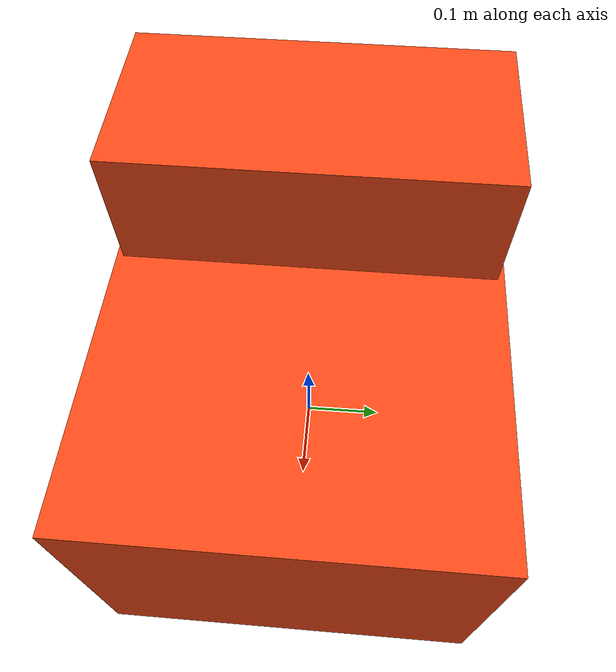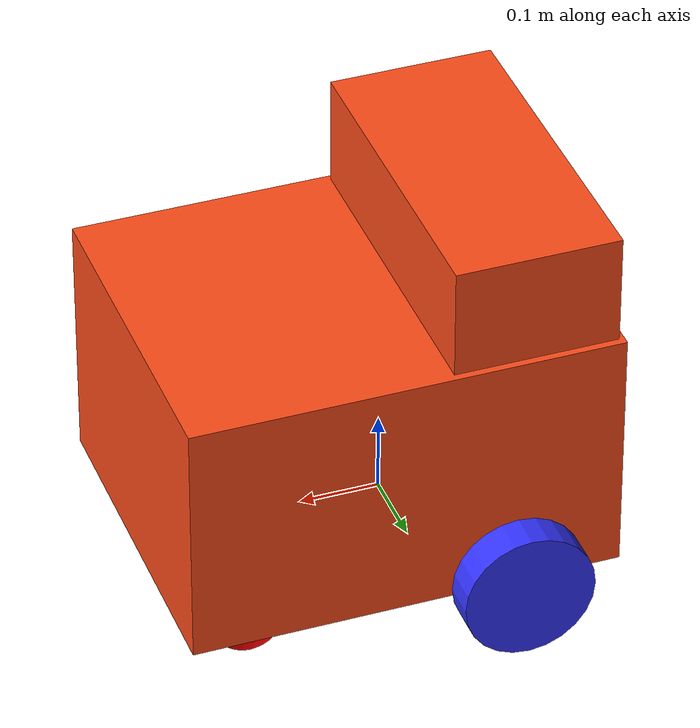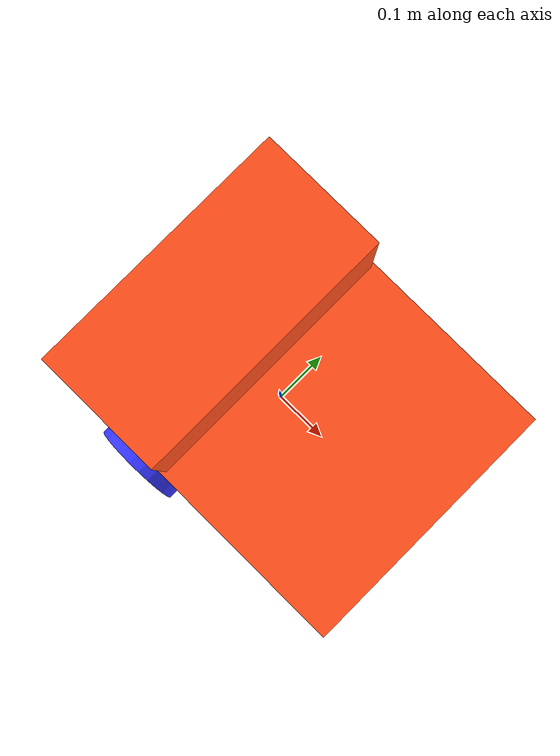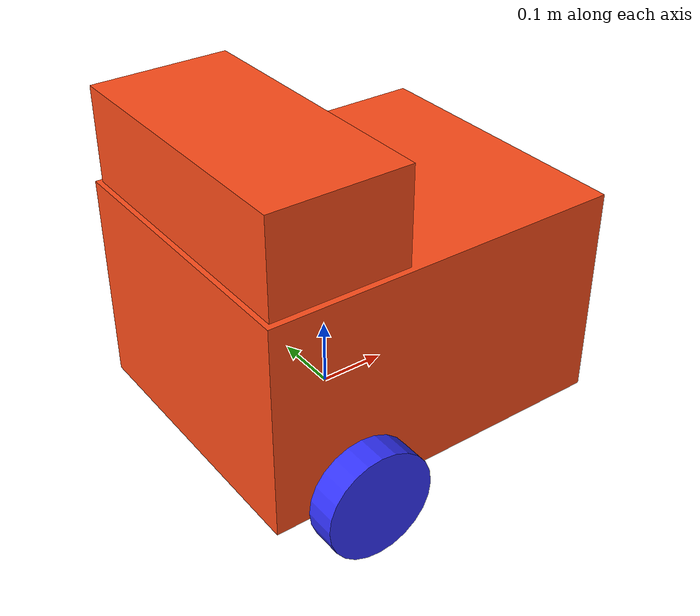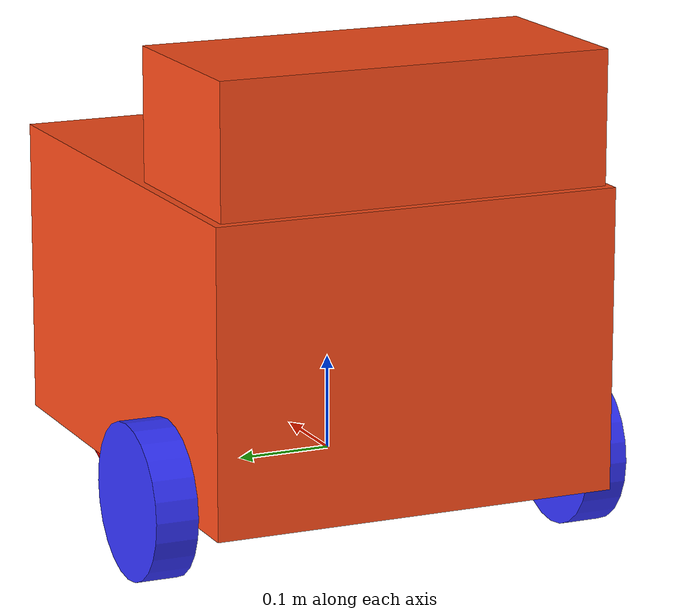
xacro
<?xml version="1.0"?>
<robot xmlns:xacro="http://www.ros.org/wiki/xacro">
    <xacro:include filename="inertial_macros.xacro"/>

    <xacro:property name="chassis_length" value="0.535"/>
    <xacro:property name="chassis_width" value="0.435"/>
    <xacro:property name="chassis_height" value="0.318"/>
    <xacro:property name="chassis_mass" value="1.0"/>
    <xacro:property name="wheel_radius" value="0.082"/>
    <xacro:property name="wheel_thickness" value="0.045"/>
    <xacro:property name="wheel_mass" value="0.05"/>
    <xacro:property name="wheel_offset_x" value="0.226"/>
    <xacro:property name="wheel_offset_y" value="0.2405"/>
    <xacro:property name="wheel_offset_z" value="0.01"/>
    <xacro:property name="caster_wheel_radius" value="0.05"/>
    <xacro:property name="caster_wheel_mass" value="0.01"/>
    <xacro:property name="caster_wheel_offset_x" value="0.075"/>
    <xacro:property name="caster_wheel_offset_z" value="${wheel_offset_z - wheel_radius + caster_wheel_radius}"/>

    <material name="white">
        <color rgba="1 1 1 1" />
    </material>

    <material name="orange">
        <color rgba="1 0.3 0.1 1"/>
    </material>

    <material name="blue">
        <color rgba="0.2 0.2 1 1"/>
    </material>

    <material name="black">
        <color rgba="0 0 0 1"/>
    </material>

    <material name="red">
        <color rgba="1 0 0 1"/>
    </material>

    <!-- BASE LINK -->
    <link name="base_link">
    </link>

    <!-- BASE_FOOTPRINT LINK -->
    <joint name="base_footprint_joint" type="fixed">
        <parent link="base_link"/>
        <child link="base_footprint"/>
        <origin xyz="0 0 0" rpy="0 0 0"/>
    </joint>

    <link name="base_footprint">
    </link>

    <!-- CHASSIS LINK -->
    <joint name="chassis_joint" type="fixed">
        <parent link="base_link"/>
        <child link="chassis"/>
        <origin xyz="${-wheel_offset_x} 0 ${-wheel_offset_z}"/>
    </joint>

    <link name="chassis">
        <visual>
            <origin xyz="${chassis_length/2} 0 ${chassis_height/2}"/>
            <geometry>
                <box size="${chassis_length} ${chassis_width} ${chassis_height}"/>
            </geometry>
            <material name="orange"/>
        </visual>

        <collision>
            <origin xyz="${chassis_length/2} 0 ${chassis_height/2}"/>
            <geometry>
                <box size="${chassis_length} ${chassis_width} ${chassis_height}"/>
            </geometry>
        </collision>
        <xacro:inertial_box mass="0.5" x="${chassis_length}" y="${chassis_width}" z="${chassis_height}">
            <origin xyz="${chassis_length/2} 0 ${chassis_height/2}" rpy="0 0 0"/>
        </xacro:inertial_box>
    </link>

    <!-- LEFT WHEEL LINK -->
    <joint name="left_wheel_joint" type="continuous">
        <parent link="base_link"/>
        <child link="left_wheel"/>
        <origin xyz="-0.095 ${wheel_offset_y} 0" rpy="-${pi/2} 0 0" />
        <axis xyz="0 0 2"/>
    </joint>

    <link name="left_wheel">
        <visual>
            <geometry>
                <cylinder radius="${wheel_radius}" length="${wheel_thickness}"/>
            </geometry>
            <material name="blue"/>
        </visual>
        <collision>
            <geometry>
                <sphere radius="${wheel_radius}"/>
            </geometry>
        </collision>
        <xacro:inertial_cylinder mass="${wheel_mass}" length="${wheel_thickness}" radius="${wheel_radius}">
            <origin xyz="0 0 0" rpy="0 0 0"/>
        </xacro:inertial_cylinder>
    </link>

    <!-- RIGHT WHEEL LINK -->
    <joint name="right_wheel_joint" type="continuous">
        <parent link="base_link"/>
        <child link="right_wheel"/>
        <origin xyz="-0.095 ${-wheel_offset_y} 0" rpy="${pi/2} 0 0" />
        <axis xyz="0 0 -2"/>
    </joint>

    <link name="right_wheel">
        <visual>
            <geometry>
                <cylinder radius="${wheel_radius}" length="${wheel_thickness}"/>
            </geometry>
            <material name="blue"/>
        </visual>
        <collision>
            <geometry>
                <sphere radius="${wheel_radius}"/>
            </geometry>
        </collision>
        <xacro:inertial_cylinder mass="${wheel_mass}" length="${wheel_thickness}" radius="${wheel_radius}">
            <origin xyz="0 0 0" rpy="0 0 0"/>
        </xacro:inertial_cylinder>
    </link>

    <!-- CASTER WHEEL LINK -->
    <joint name="caster_wheel_joint" type="fixed">
        <parent link="chassis"/>
        <child link="caster_wheel"/>
        <origin xyz="0.445 0.1300 ${caster_wheel_offset_z}"/>
    </joint>

    <link name="caster_wheel">
        <visual>
            <geometry>
                <sphere radius="${caster_wheel_radius}"/>
            </geometry>
            <material name="red"/>
        </visual>
        <collision>
            <geometry>
                <sphere radius="${caster_wheel_radius}"/>
            </geometry>
        </collision>
        <xacro:inertial_sphere mass="${caster_wheel_mass}" radius="${caster_wheel_radius}">
            <origin xyz="0 0 0" rpy="0 0 0"/>
        </xacro:inertial_sphere>
    </link>

    <!-- CASTER2 WHEEL LINK -->
    <joint name="caster2_wheel_joint" type="fixed">
        <parent link="chassis"/>
        <child link="caster2_wheel"/>
        <origin xyz="0.445 -0.1300 ${caster_wheel_offset_z}"/>
    </joint>

    <link name="caster2_wheel">
        <visual>
            <geometry>
                <sphere radius="${caster_wheel_radius}"/>
            </geometry>
            <material name="red"/>
        </visual>
        <collision>
            <geometry>
                <sphere radius="${caster_wheel_radius}"/>
            </geometry>
        </collision>
        <xacro:inertial_sphere mass="${caster_wheel_mass}" radius="${caster_wheel_radius}">
            <origin xyz="0 0 0" rpy="0 0 0"/>
        </xacro:inertial_sphere>
    </link>

    <!-- HEAD LINK -->
    <joint name="head_joint" type="fixed">
        <parent link="chassis"/>
        <child link="head"/>
        <origin xyz="${-wheel_offset_x} 0 ${-wheel_offset_z}"/>
    </joint>

    <link name="head">
        <visual>
            <origin xyz="0.335 0 0.399"/>
            <geometry>
                <box size="0.204 0.419 0.140"/>
            </geometry>
            <material name="orange"/>
        </visual>

        <collision>
            <origin xyz="${chassis_length/2} 0 ${chassis_height/2}"/>
            <geometry>
                <box size="${chassis_length} ${chassis_width} ${chassis_height}"/>
            </geometry>
        </collision>
        <xacro:inertial_box mass="0.5" x="${chassis_length}" y="${chassis_width}" z="${chassis_height}">
            <origin xyz="${chassis_length/2} 0 ${chassis_height/2}" rpy="0 0 0"/>
        </xacro:inertial_box>
    </link>

</robot>
